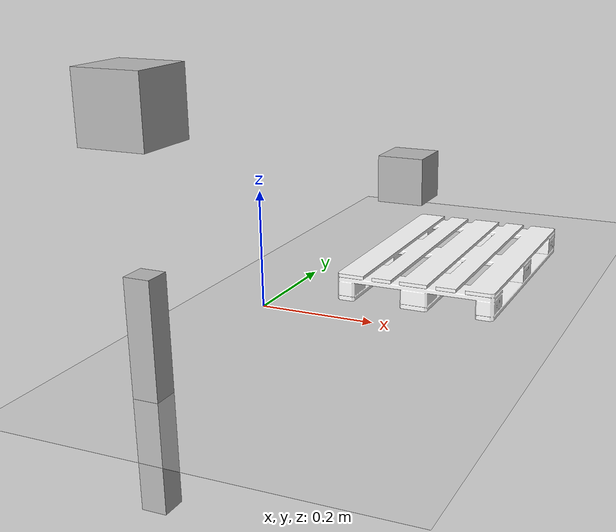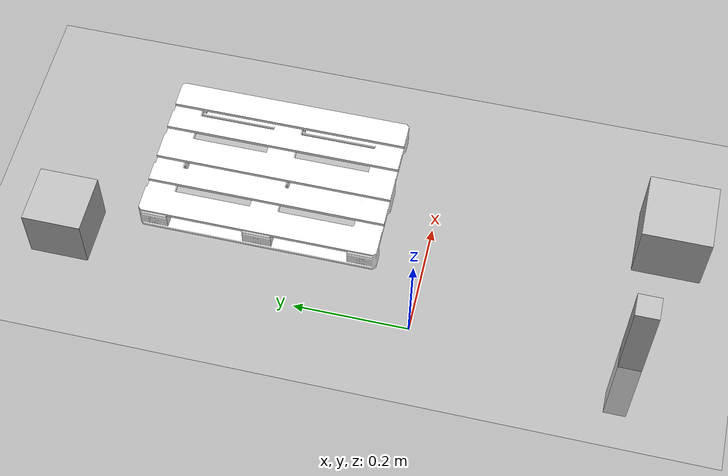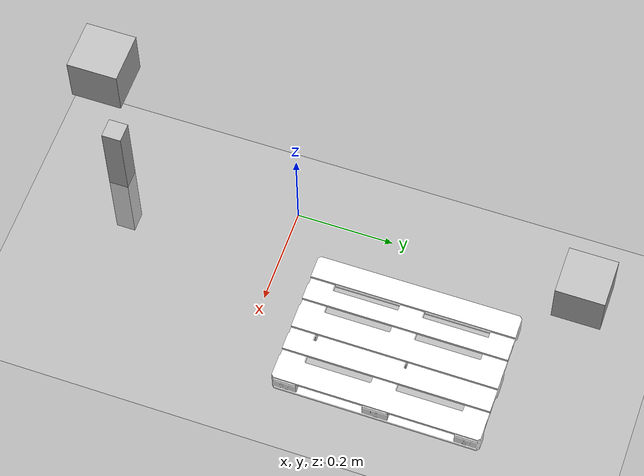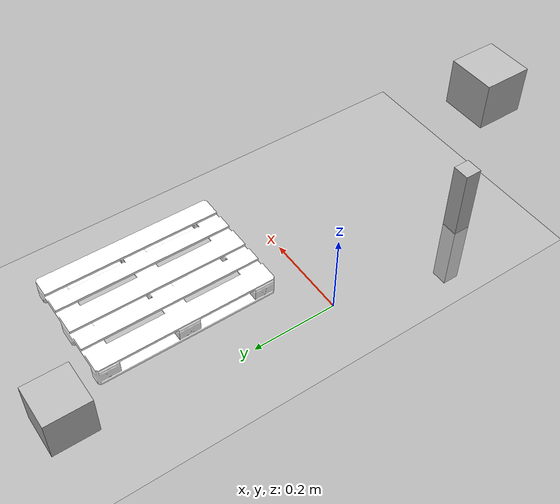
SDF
<sdf version="1.7">
  <world name="default">
    <gravity>0.0 0.0 -9.8</gravity>

    <!-- Existing environment -->
    <include><uri>https://fuel.gazebosim.org/1.0/OpenRobotics/models/Sun</uri></include>
    <include><uri>https://fuel.gazebosim.org/1.0/OpenRobotics/models/Ground Plane</uri></include>

    <include>
      <uri>model://cardboard_box</uri>
      <pose>0.03 0.6 0.05 0 0 0.0</pose>
      <name>cardboard_box_1</name>
    </include>

    <include>
      <uri>model://pallet</uri>
      <pose>0.1 0.50 0.0 0 0 0</pose>
    </include>

    <!-- goal cardboard box -->
    <include>
      <uri>model://cardboard_box</uri>
      <pose>0.03 -0.37 0.35 0.0 0.0 0.0</pose>
      <name>cardboard_box_2</name>
    </include>

    <!-- box stand -->
    <model name="box_stand">
      <pose>0.03 -0.37 0.0 0 0 0</pose>
      <link name="link">
        <collision name="collision">
          <geometry>
            <box>
              <size>0.04 0.04 0.35</size>
            </box>
          </geometry>
        </collision>
        <visual name="visual">
          <geometry>
            <box>
              <size>0.04 0.04 0.35</size>
            </box>
          </geometry>
        </visual>
      </link>
      <static>true</static>
    </model>

    <scene><shadows>false</shadows></scene>
  </world>
</sdf>

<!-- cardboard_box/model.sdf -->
<sdf version="1.6">
  <model name="cardboard_box">
    <pose>0 0 0.15 0 0 0</pose>
    <link name="link">
      <inertial>
        <mass>0.75</mass>
        <inertia>
          <ixx>0.041666667</ixx>
          <ixy>0</ixy>
          <ixz>0</ixz>
          <iyy>0.056666667</iyy>
          <iyz>0</iyz>
          <izz>0.068333333</izz>
        </inertia>
      </inertial>
      <collision name="collision">
        <geometry>

          <mesh>
            <uri>model://cardboard_box/meshes/cardboard_box.dae</uri>
            <scale>0.25 0.25 0.3</scale>
          </mesh>
        </geometry>
        <surface>
          <friction>
            <ode>
              <mu>0.0</mu>
              <mu2>0.0</mu2>
            </ode>
          </friction>
          <contact>
            <ode>
              <kp>1000.0</kp>
              <kd>10</kd>
              <min_depth>0.001</min_depth>
              <max_vel>10.0</max_vel>
            </ode>
          </contact>
        </surface>
      </collision>
      <visual name="visual">
        <pose>0 0 0 0 0 0</pose>
        <geometry>
          <mesh>
            <uri>model://cardboard_box/meshes/cardboard_box.dae</uri>
            <scale>0.25 0.25 0.25</scale>
          </mesh>
        </geometry>
      </visual>
    </link>
  </model>
</sdf>

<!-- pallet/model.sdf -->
<sdf version='1.6'>
  <model name='pallet'>
    <pose frame=''>0 0 0.07 0 0 0</pose>
    <self_collide>false</self_collide>
    <!-- BASE_LINK FRAME -->
    <link name='pallet_base'>
      <pose frame=''>0 0 0 0 0 0</pose>
      <collision name="pallet_right_collision">
        <geometry>

          <mesh>
            <scale>0.35 0.35 0.35</scale>
            <uri>model://pallet/meshes/pallet.dae</uri>
          </mesh>
        </geometry>
      </collision>
      <visual name='pallet_visual'>
        <pose frame=''>0 0 0 0 0 0</pose>
        <geometry>
          <mesh>
            <scale>0.35 0.35 0.35</scale>
            <uri>model://pallet/meshes/pallet.dae</uri>
          </mesh>
        </geometry>
      </visual>
    </link>
    <static>0</static>
  </model>
</sdf>
